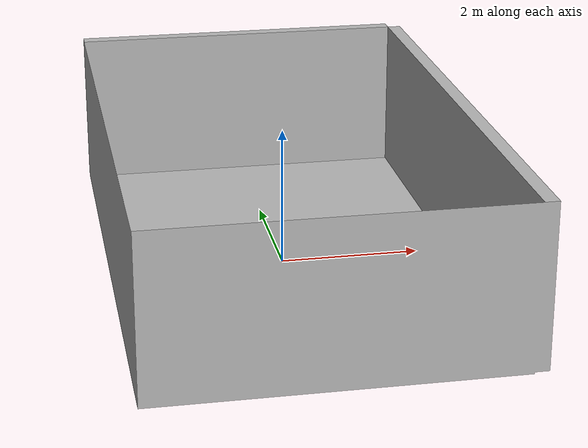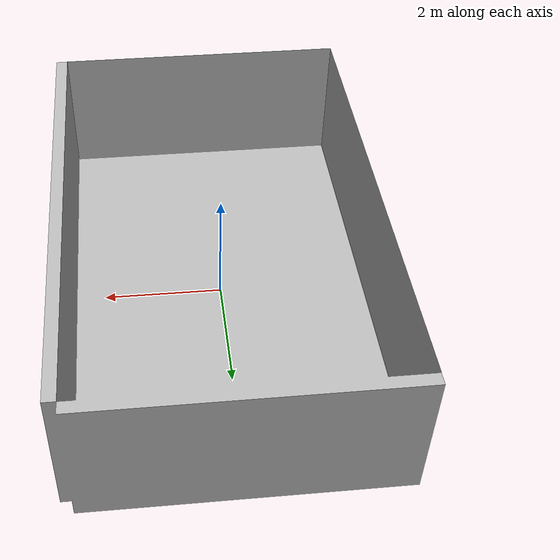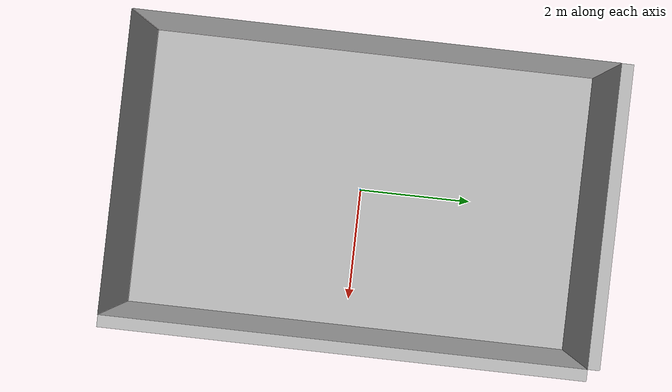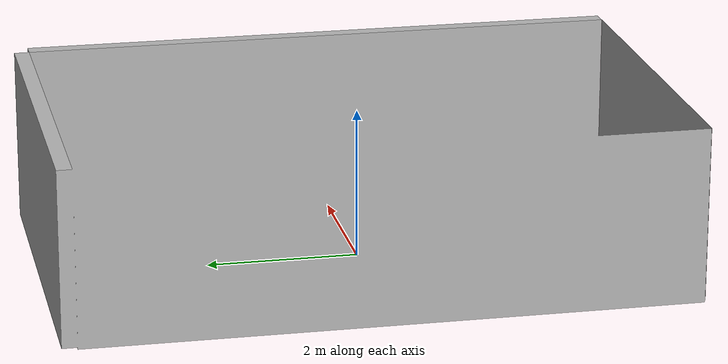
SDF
<?xml version="1.0"?>
<sdf version="1.9">
  <world name="simulation_world">

    <!-- Physics properties -->
    <physics type="ode">
      <max_step_size>0.004</max_step_size>
      <real_time_factor>1.0</real_time_factor>
      <real_time_update_rate>250</real_time_update_rate>
    </physics>
    <gravity>0 0 -9.8</gravity>
    <magnetic_field>6e-06 2.3e-05 -4.2e-05</magnetic_field>
    <atmosphere type="adiabatic" />
    <scene>
      <grid>false</grid>
      <ambient>0.4 0.4 0.4 1</ambient>
      <background>0.7 0.7 0.7 1</background>
      <shadows>true</shadows>
    </scene>

    <!-- Taguspark arena cage -->
    <model name="taguspark_mesh">
      <static>true</static>
      <link name="taguspark_link">
        <collision name="collision">
          <geometry>
            <mesh>
              <uri>model://taguspark/meshes/Taguspark.stl</uri>
            </mesh>
          </geometry>
        </collision>
        <visual name="taguspark_visual">
          <geometry>
            <mesh>
              <uri>model://taguspark/meshes/Taguspark.dae</uri>
            </mesh>
          </geometry>
        </visual>
      </link>
    </model>

    <!-- Sun light -->
    <light name="sunUTC" type="directional">
      <pose>0 0 500 0 -0 0</pose>
      <cast_shadows>true</cast_shadows>
      <intensity>1</intensity>
      <direction>0.001 0.625 -0.78</direction>
      <diffuse>0.904 0.904 0.904 1</diffuse>
      <specular>0.271 0.271 0.271 1</specular>
      <attenuation>
        <range>2000</range>
        <linear>0</linear>
        <constant>1</constant>
        <quadratic>0</quadratic>
      </attenuation>
      <spot>
        <inner_angle>0</inner_angle>
        <outer_angle>0</outer_angle>
        <falloff>0</falloff>
      </spot>
    </light>

    <!-- Spherical coordinates for GPS simulation -->
    <spherical_coordinates>
      <surface_model>EARTH_WGS84</surface_model>
      <world_frame_orientation>ENU</world_frame_orientation>
      <latitude_deg>38.73713766742715</latitude_deg>
      <longitude_deg>-9.30317631014357</longitude_deg>
      <elevation>0</elevation>
    </spherical_coordinates>
  </world>
</sdf>
